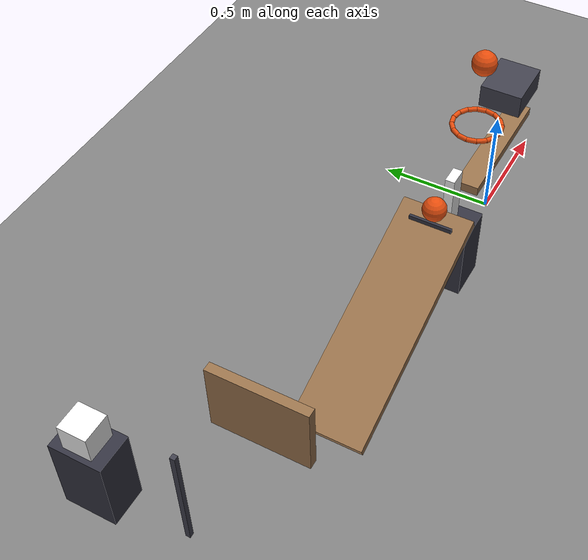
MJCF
<mujoco model="gravity_driven_chain">
  <compiler angle="radian"/>
  <option timestep="0.002"/>
  <worldbody>
    <geom name="floor" type="plane" size="6 6 0.1" friction="0.72 0.001 0.0001"/>
    <body name="lever1" pos="0 0 0.35">
      <joint name="lever_hinge" type="hinge" pos="0 0 0" axis="0 1 0" limited="true" range="-0.785398 0" damping="0.04"/>
      <geom name="lever1" type="box" pos="0 0 0" size="0.3 0.05 0.02" mass="0.5" friction="0.72 0.005 0.0001" solref="0.01 1" rgba="0.6 0.45 0.3 1"/>
    </body>
    <body name="ring1">
      <geom name="ring1_00" type="capsule" size="0.01" fromto="-0.17 0 0.67 -0.177612 0.0382683 0.67" friction="0.72 0.005 0.0001" solref="0.01 1" rgba="0.9 0.3 0.05 1"/>
      <geom name="ring1_01" type="capsule" size="0.01" fromto="-0.177612 0.0382683 0.67 -0.199289 0.0707107 0.67" friction="0.72 0.005 0.0001" solref="0.01 1" rgba="0.9 0.3 0.05 1"/>
      <geom name="ring1_02" type="capsule" size="0.01" fromto="-0.199289 0.0707107 0.67 -0.231732 0.092388 0.67" friction="0.72 0.005 0.0001" solref="0.01 1" rgba="0.9 0.3 0.05 1"/>
      <geom name="ring1_03" type="capsule" size="0.01" fromto="-0.231732 0.092388 0.67 -0.27 0.1 0.67" friction="0.72 0.005 0.0001" solref="0.01 1" rgba="0.9 0.3 0.05 1"/>
      <geom name="ring1_04" type="capsule" size="0.01" fromto="-0.27 0.1 0.67 -0.308268 0.092388 0.67" friction="0.72 0.005 0.0001" solref="0.01 1" rgba="0.9 0.3 0.05 1"/>
      <geom name="ring1_05" type="capsule" size="0.01" fromto="-0.308268 0.092388 0.67 -0.340711 0.0707107 0.67" friction="0.72 0.005 0.0001" solref="0.01 1" rgba="0.9 0.3 0.05 1"/>
      <geom name="ring1_06" type="capsule" size="0.01" fromto="-0.340711 0.0707107 0.67 -0.362388 0.0382683 0.67" friction="0.72 0.005 0.0001" solref="0.01 1" rgba="0.9 0.3 0.05 1"/>
      <geom name="ring1_07" type="capsule" size="0.01" fromto="-0.362388 0.0382683 0.67 -0.37 1.22465e-17 0.67" friction="0.72 0.005 0.0001" solref="0.01 1" rgba="0.9 0.3 0.05 1"/>
      <geom name="ring1_08" type="capsule" size="0.01" fromto="-0.37 1.22465e-17 0.67 -0.362388 -0.0382683 0.67" friction="0.72 0.005 0.0001" solref="0.01 1" rgba="0.9 0.3 0.05 1"/>
      <geom name="ring1_09" type="capsule" size="0.01" fromto="-0.362388 -0.0382683 0.67 -0.340711 -0.0707107 0.67" friction="0.72 0.005 0.0001" solref="0.01 1" rgba="0.9 0.3 0.05 1"/>
      <geom name="ring1_10" type="capsule" size="0.01" fromto="-0.340711 -0.0707107 0.67 -0.308268 -0.092388 0.67" friction="0.72 0.005 0.0001" solref="0.01 1" rgba="0.9 0.3 0.05 1"/>
      <geom name="ring1_11" type="capsule" size="0.01" fromto="-0.308268 -0.092388 0.67 -0.27 -0.1 0.67" friction="0.72 0.005 0.0001" solref="0.01 1" rgba="0.9 0.3 0.05 1"/>
      <geom name="ring1_12" type="capsule" size="0.01" fromto="-0.27 -0.1 0.67 -0.231732 -0.092388 0.67" friction="0.72 0.005 0.0001" solref="0.01 1" rgba="0.9 0.3 0.05 1"/>
      <geom name="ring1_13" type="capsule" size="0.01" fromto="-0.231732 -0.092388 0.67 -0.199289 -0.0707107 0.67" friction="0.72 0.005 0.0001" solref="0.01 1" rgba="0.9 0.3 0.05 1"/>
      <geom name="ring1_14" type="capsule" size="0.01" fromto="-0.199289 -0.0707107 0.67 -0.177612 -0.0382683 0.67" friction="0.72 0.005 0.0001" solref="0.01 1" rgba="0.9 0.3 0.05 1"/>
      <geom name="ring1_15" type="capsule" size="0.01" fromto="-0.177612 -0.0382683 0.67 -0.17 -2.44929e-17 0.67" friction="0.72 0.005 0.0001" solref="0.01 1" rgba="0.9 0.3 0.05 1"/>
    </body>
    <body name="ball1" pos="-0.27 0 0.97">
      <freejoint/>
      <geom name="ball1" type="sphere" pos="0 0 0" size="0.05" mass="0.2" condim="6" friction="0.72 0.001 0.0001" solref="0.01 1" rgba="0.9 0.3 0.05 1"/>
    </body>
    <body name="cart1" pos="0.1 100 0.603">
      <joint name="cart_guide" type="hinge" pos="0 0 0" axis="0 0 1" limited="true" range="-0.00430049 0" damping="2000"/>
      <geom name="cart1" type="box" pos="0 -100 0" size="0.11 0.09 0.05" mass="0.5" friction="0.72 0.005 0.0001" solref="0.01 1" rgba="0.25 0.25 0.3 1"/>
    </body>
    <body name="domino pedestal">
      <geom name="domino pedestal" type="box" pos="-0.47 0 0.16" size="0.09 0.11 0.16" friction="0.72 0.005 0.0001" solref="0.01 1" rgba="0.2 0.2 0.25 1"/>
    </body>
    <body name="domino1" pos="-0.47 0 0.44">
      <freejoint/>
      <geom name="domino1" type="box" pos="0 0 0" size="0.04 0.02 0.12" mass="0.25" friction="0.72 0.005 0.0001" solref="0.01 1" rgba="0.95 0.95 0.95 1"/>
    </body>
    <body name="ramp1">
      <geom name="ramp1" type="box" pos="-1.06772 0 0.302216" size="0.5 0.15 0.02" euler="0 2.79253 0" friction="0.72 0.005 0.0001" solref="0.01 1" rgba="0.6 0.45 0.3 1"/>
    </body>
    <body name="ball keeper">
      <geom name="ball keeper" type="box" pos="-0.6805 0 0.4761" size="0.006 0.09 0.009" friction="0.72 0.005 0.0001" solref="0.01 1" rgba="0.2 0.2 0.25 1"/>
    </body>
    <body name="ball2" pos="-0.65 0 0.528743">
      <freejoint/>
      <geom name="ball2" type="sphere" pos="0 0 0" size="0.05" mass="0.2" condim="6" friction="0.72 0.001 0.0001" solref="0.01 1" rgba="0.9 0.3 0.05 1"/>
    </body>
    <body name="door1" pos="-1.6644 0.4 0.3">
      <joint name="door_hinge" type="hinge" pos="0 0 0" axis="0 0 1" limited="true" range="-1.22173 0" damping="0.04"/>
      <geom name="door1" type="box" pos="0 -0.21 0" size="0.02 0.21 0.16" mass="0.45" friction="0.72 0.005 0.0001" solref="0.01 1" rgba="0.6 0.45 0.3 1"/>
    </body>
    <body name="pendulum1" pos="-2.05907 0.26 0.03">
      <joint name="pendulum_hinge" type="hinge" pos="0 0 0" axis="1 0 0" limited="true" range="-0.663225 0" damping="0.04"/>
      <geom name="pendulum1" type="box" pos="0 0 0.25" size="0.01 0.01 0.25" mass="0.35" friction="0.72 0.005 0.0001" solref="0.01 1" rgba="0.25 0.25 0.3 1"/>
    </body>
    <body name="block pedestal">
      <geom name="block pedestal" type="box" pos="-2.05907 0.634 0.175" size="0.08 0.11 0.175" friction="0.72 0.005 0.0001" solref="0.01 1" rgba="0.2 0.2 0.25 1"/>
    </body>
    <body name="block1" pos="-2.05907 0.634 0.41">
      <freejoint/>
      <geom name="block1" type="box" pos="0 0 0" size="0.06 0.06 0.06" mass="0.35" friction="0.72 0.005 0.0001" solref="0.01 1" rgba="0.95 0.95 0.95 1"/>
    </body>
  </worldbody>
  <keyframe>
    <key name="start" qpos="0 -0.27 0 0.97 1 0 0 0 0 -0.47 0 0.44 1 0 0 0 -0.65 0 0.528743 1 0 0 0 0 0 -2.05907 0.634 0.41 1 0 0 0" qvel="0 0 0 0 0 0 0 0 0 0 0 0 0 0 0 0 0 0 0 0 0 0 0 0 0 0 0 0"/>
  </keyframe>
</mujoco>
